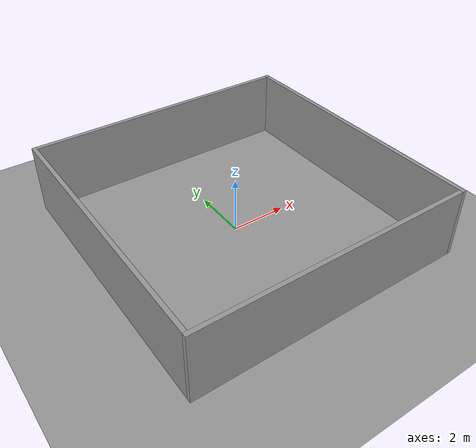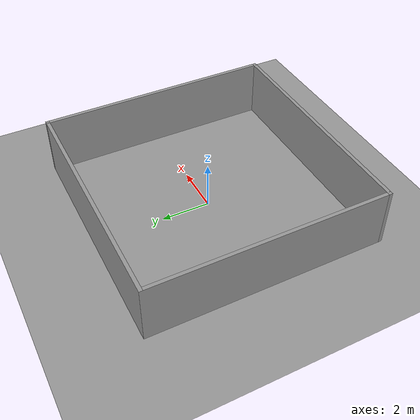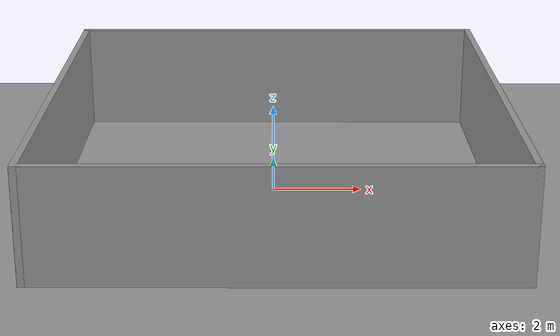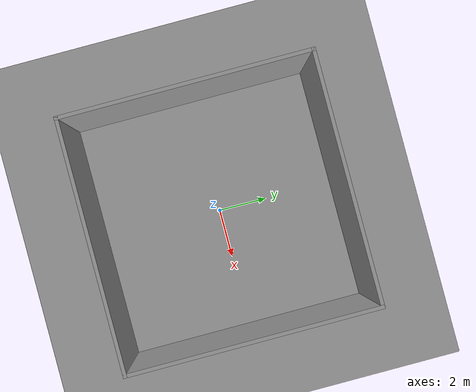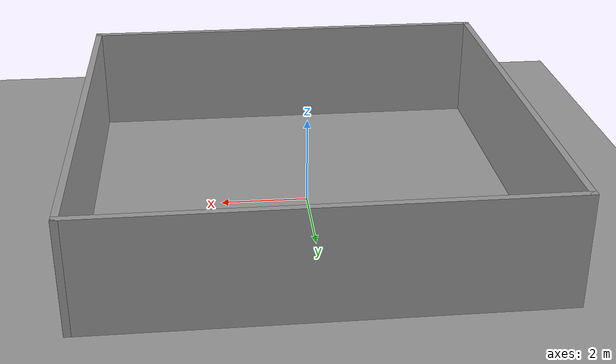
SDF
<sdf version="1.6">
 <world name="default">
  <light name="sun" type="directional">
   <pose>0 0 10 0 -0 0</pose>
   <diffuse>0.8 0.8 0.8 1</diffuse>
   <specular>0.2 0.2 0.2 1</specular>
   <attenuation>
    <range>1000</range>
    <constant>0.9</constant>
    <linear>0.01</linear>
    <quadratic>0.001</quadratic>
   </attenuation>
   <direction>0.5 0.1 -0.9</direction>
  </light>
  <scene><ambient>0.4 0.4 0.4 1</ambient><background>0.7 0.7 0.7 1</background><shadows>1</shadows></scene>
  <physics name="default_physics" default="0" type="ode">
   <max_step_size>0.01</max_step_size>
   <real_time_factor>1</real_time_factor>
   <real_time_update_rate>100</real_time_update_rate>
  </physics>
  <model name="ground_plane_0">
   <static>1</static>
   <link name="link">
    <collision name="collision">
     <geometry><plane><normal>0 0 1</normal><size>100 100</size></plane></geometry>
     <surface><friction><ode><mu>100</mu><mu2>50</mu2></ode></friction></surface>
    </collision>
    <visual name="visual">
     <cast_shadows>0</cast_shadows>
     <geometry><plane><normal>0 0 1</normal><size>100 100</size></plane></geometry>
     <material>
      <script><uri>file://media/materials/scripts/gazebo.material</uri><name>Gazebo/Grey</name></script>
     </material>
    </visual>
    <velocity_decay><linear>0</linear><angular>0</angular></velocity_decay>
   </link>
   <pose>0.497681 0 0 0 -0 0</pose>
  </model>
  <gravity>0 0 -9.8</gravity>
  <magnetic_field>6e-06 2.3e-05 -4.2e-05</magnetic_field>
  <atmosphere type="adiabatic"/>
  <spherical_coordinates>
   <surface_model>EARTH_WGS84</surface_model>
   <latitude_deg>0</latitude_deg>
   <longitude_deg>0</longitude_deg>
   <elevation>0</elevation>
   <heading_deg>0</heading_deg>
  </spherical_coordinates>
  <model name="ten_square">
   <pose>0.07859 -0.053543 0 0 -0 0</pose>
   <link name="Wall_0">
    <collision name="Wall_0_Collision">
     <geometry><box><size>10 0.15 2.5</size></box></geometry>
     <pose>0 0 1.25 0 -0 0</pose>
    </collision>
    <visual name="Wall_0_Visual">
     <pose>0 0 1.25 0 -0 0</pose>
     <geometry><box><size>10 0.15 2.5</size></box></geometry>
     <material>
      <script><uri>file://media/materials/scripts/gazebo.material</uri><name>Gazebo/Grey</name></script>
      <ambient>1 1 1 1</ambient>
     </material>
    </visual>
    <pose>-4.925 0 0 0 -0 1.5708</pose>
   </link>
   <link name="Wall_2">
    <collision name="Wall_2_Collision">
     <geometry><box><size>10 0.15 2.5</size></box></geometry>
     <pose>0 0 1.25 0 -0 0</pose>
    </collision>
    <visual name="Wall_2_Visual">
     <pose>0 0 1.25 0 -0 0</pose>
     <geometry><box><size>10 0.15 2.5</size></box></geometry>
     <material>
      <script><uri>file://media/materials/scripts/gazebo.material</uri><name>Gazebo/Grey</name></script>
      <ambient>1 1 1 1</ambient>
     </material>
    </visual>
    <pose>0 -4.925 0 0 -0 0</pose>
   </link>
   <link name="Wall_3">
    <collision name="Wall_3_Collision">
     <geometry><box><size>10 0.15 2.5</size></box></geometry>
     <pose>0 0 1.25 0 -0 0</pose>
    </collision>
    <visual name="Wall_3_Visual">
     <pose>0 0 1.25 0 -0 0</pose>
     <geometry><box><size>10 0.15 2.5</size></box></geometry>
     <material>
      <script><uri>file://media/materials/scripts/gazebo.material</uri><name>Gazebo/Grey</name></script>
      <ambient>1 1 1 1</ambient>
     </material>
    </visual>
    <pose>4.925 0 0 0 -0 1.5708</pose>
   </link>
   <link name="Wall_4">
    <collision name="Wall_4_Collision">
     <geometry><box><size>10 0.15 2.5</size></box></geometry>
     <pose>0 0 1.25 0 -0 0</pose>
    </collision>
    <visual name="Wall_4_Visual">
     <pose>0 0 1.25 0 -0 0</pose>
     <geometry><box><size>10 0.15 2.5</size></box></geometry>
     <material>
      <script><uri>file://media/materials/scripts/gazebo.material</uri><name>Gazebo/Grey</name></script>
      <ambient>1 1 1 1</ambient>
     </material>
    </visual>
    <pose>0 4.925 0 0 -0 3.14159</pose>
   </link>
   <static>1</static>
  </model>
 </world>
</sdf>
